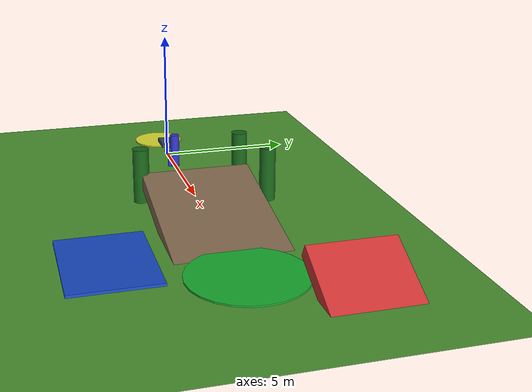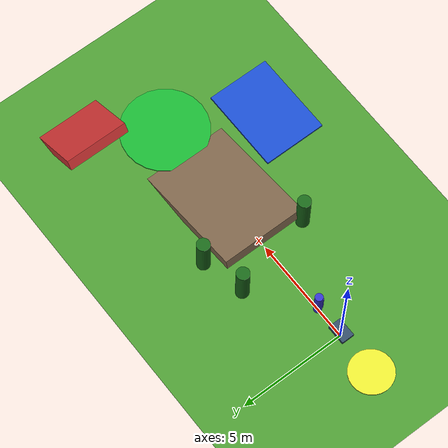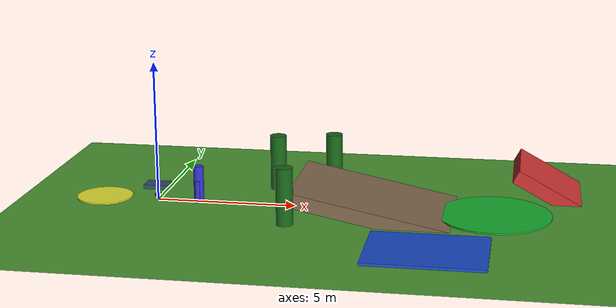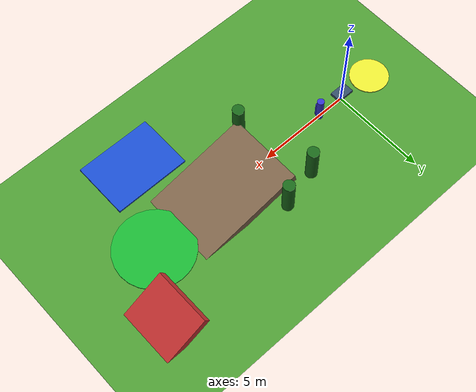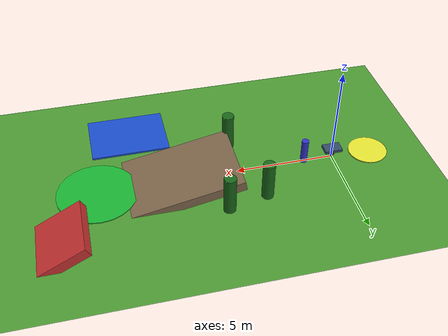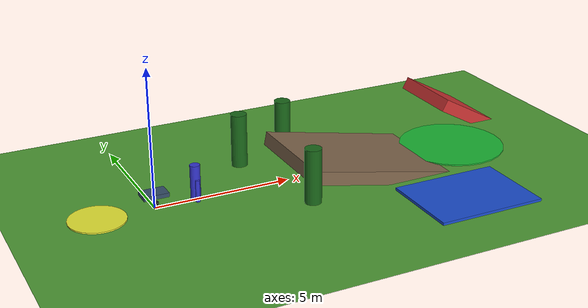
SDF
<?xml version="1.0"?>
<sdf version="1.9">
  <world name="golf_course">

    <!-- ===================== Physics ===================== -->
    <physics type="ode">
      <max_step_size>0.001</max_step_size>
      <real_time_factor>1</real_time_factor>
      <real_time_update_rate>1000</real_time_update_rate>
    </physics>

    <!-- run to completion so the simulation actually advances -->
    <plugin filename="gz-sim-physics-system" name="gz::sim::systems::Physics"/>
    <plugin filename="gz-sim-user-commands-system" name="gz::sim::systems::UserCommands"/>
    <plugin filename="gz-sim-scene-broadcaster-system" name="gz::sim::systems::SceneBroadcaster"/>
    <!-- Sensor system: processes LiDAR/IMU/GPS/camera sensors -->
    <plugin filename="gz-sim-sensors-system" name="gz::sim::systems::Sensors"/>
    <!-- IMU and NavSat (GPS) sensor systems -->
    <plugin filename="gz-sim-imu-system" name="gz::sim::systems::Imu"/>
    <plugin filename="gz-sim-navsat-system" name="gz::sim::systems::NavSat"/>

    <!-- ===================== Ground / fairway ===================== -->
    <!-- A large flat ground plane. -->
    <model name="ground_plane">
      <static>true</static>
      <link name="link">
        <collision name="collision">
          <geometry>
            <plane>
              <normal>0 0 1</normal>
              <size>200 200</size>
            </plane>
          </geometry>
        </collision>
        <visual name="visual">
          <geometry>
            <plane>
              <normal>0 0 1</normal>
              <size>200 200</size>
            </plane>
          </geometry>
          <material>
            <ambient>0.3 0.6 0.2 1</ambient>
            <diffuse>0.3 0.6 0.2 1</diffuse>
          </material>
        </visual>
      </link>
    </model>

    <!-- ===================== Slope (test roll/pitch costmap) ===================== -->
    <!-- A ramp rising toward +X, so the cart pitches up when driving onto it. -->
    <model name="slope_ramp">
      <static>true</static>
      <pose>8 0 0 0 0 0</pose>
      <link name="link">
        <collision name="collision">
          <geometry>
            <box>
              <size>6 4 0.5</size>
            </box>
          </geometry>
          <pose>0 0 0.25 0 0.2 0</pose>
        </collision>
        <visual name="visual">
          <geometry>
            <box>
              <size>6 4 0.5</size>
            </box>
          </geometry>
          <pose>0 0 0.25 0 0.2 0</pose>
          <material>
            <ambient>0.5 0.4 0.3 1</ambient>
            <diffuse>0.5 0.4 0.3 1</diffuse>
          </material>
        </visual>
      </link>
    </model>

    <!-- ===================== Obstacles (trees) ===================== -->
    <!-- A cluster of trees to the right of the cart's path. -->
    <model name="tree_1">
      <static>true</static>
      <pose>4 2 0 0 0 0</pose>
      <link name="link">
        <collision name="collision">
          <geometry>
            <cylinder>
              <radius>0.3</radius>
              <length>2.0</length>
            </cylinder>
          </geometry>
          <pose>0 0 1.0 0 0 0</pose>
        </collision>
        <visual name="visual">
          <geometry>
            <cylinder>
              <radius>0.3</radius>
              <length>2.0</length>
            </cylinder>
          </geometry>
          <pose>0 0 1.0 0 0 0</pose>
          <material>
            <ambient>0.1 0.4 0.1 1</ambient>
            <diffuse>0.1 0.4 0.1 1</diffuse>
          </material>
        </visual>
      </link>
    </model>

    <model name="tree_2">
      <static>true</static>
      <pose>6 2.5 0 0 0 0</pose>
      <link name="link">
        <collision name="collision">
          <geometry>
            <cylinder>
              <radius>0.3</radius>
              <length>2.0</length>
            </cylinder>
          </geometry>
          <pose>0 0 1.0 0 0 0</pose>
        </collision>
        <visual name="visual">
          <geometry>
            <cylinder>
              <radius>0.3</radius>
              <length>2.0</length>
            </cylinder>
          </geometry>
          <pose>0 0 1.0 0 0 0</pose>
          <material>
            <ambient>0.1 0.4 0.1 1</ambient>
            <diffuse>0.1 0.4 0.1 1</diffuse>
          </material>
        </visual>
      </link>
    </model>

    <model name="tree_3">
      <static>true</static>
      <pose>5 -2 0 0 0 0</pose>
      <link name="link">
        <collision name="collision">
          <geometry>
            <cylinder>
              <radius>0.3</radius>
              <length>2.0</length>
            </cylinder>
          </geometry>
          <pose>0 0 1.0 0 0 0</pose>
        </collision>
        <visual name="visual">
          <geometry>
            <cylinder>
              <radius>0.3</radius>
              <length>2.0</length>
            </cylinder>
          </geometry>
          <pose>0 0 1.0 0 0 0</pose>
          <material>
            <ambient>0.1 0.4 0.1 1</ambient>
            <diffuse>0.1 0.4 0.1 1</diffuse>
          </material>
        </visual>
      </link>
    </model>

    <!-- ===================== Green (target area) ===================== -->
    <model name="green">
      <static>true</static>
      <pose>12 0 0 0 0 0</pose>
      <link name="link">
        <collision name="collision">
          <geometry>
            <cylinder>
              <radius>2.0</radius>
              <length>0.05</length>
            </cylinder>
          </geometry>
          <pose>0 0 0.025 0 0 0</pose>
        </collision>
        <visual name="visual">
          <geometry>
            <cylinder>
              <radius>2.0</radius>
              <length>0.05</length>
            </cylinder>
          </geometry>
          <pose>0 0 0.025 0 0 0</pose>
          <material>
            <ambient>0.1 0.7 0.2 1</ambient>
            <diffuse>0.1 0.7 0.2 1</diffuse>
          </material>
        </visual>
      </link>
    </model>

    <!-- ===================== Tee (start area) ===================== -->
    <model name="tee">
      <static>true</static>
      <pose>-2 0 0 0 0 0</pose>
      <link name="link">
        <collision name="collision">
          <geometry>
            <cylinder>
              <radius>1.0</radius>
              <length>0.05</length>
            </cylinder>
          </geometry>
          <pose>0 0 0.025 0 0 0</pose>
        </collision>
        <visual name="visual">
          <geometry>
            <cylinder>
              <radius>1.0</radius>
              <length>0.05</length>
            </cylinder>
          </geometry>
          <pose>0 0 0.025 0 0 0</pose>
          <material>
            <ambient>0.9 0.9 0.2 1</ambient>
            <diffuse>0.9 0.9 0.2 1</diffuse>
          </material>
        </visual>
      </link>
    </model>

    <!-- ===================== Water hazard (forbidden zone) ===================== -->
    <model name="water_hazard">
      <static>true</static>
      <pose>10 -4 0 0 0 0</pose>
      <link name="link">
        <collision name="collision">
          <geometry>
            <box>
              <size>4 3 0.1</size>
            </box>
          </geometry>
          <pose>0 0 0.05 0 0 0</pose>
        </collision>
        <visual name="visual">
          <geometry>
            <box>
              <size>4 3 0.1</size>
            </box>
          </geometry>
          <pose>0 0 0.05 0 0 0</pose>
          <material>
            <ambient>0.1 0.3 0.8 1</ambient>
            <diffuse>0.1 0.3 0.8 1</diffuse>
          </material>
        </visual>
      </link>
    </model>

    <!-- ===================== Steep zone (forbidden / high slope cost) ===================== -->
    <model name="steep_zone">
      <static>true</static>
      <pose>14 3 0 0 0 0</pose>
      <link name="link">
        <collision name="collision">
          <geometry>
            <box>
              <size>3 3 0.5</size>
            </box>
          </geometry>
          <pose>0 0 0.25 0 0.5 0</pose>
        </collision>
        <visual name="visual">
          <geometry>
            <box>
              <size>3 3 0.5</size>
            </box>
          </geometry>
          <pose>0 0 0.25 0 0.5 0</pose>
          <material>
            <ambient>0.8 0.2 0.2 1</ambient>
            <diffuse>0.8 0.2 0.2 1</diffuse>
          </material>
        </visual>
      </link>
    </model>

    <!-- ===================== Golf cart model ===================== -->
    <model name="golfcart">
      <!-- Spawn the cart at the origin, facing +X. -->
      <pose>0 0 0.18 0 0 0</pose>

      <!-- ===== ros2_control interface read by gz_ros2_control ===== -->
      <ros2_control name="GazeboSystem" type="system">
        <hardware>
          <plugin>gz_ros2_control/GazeboSimSystem</plugin>
        </hardware>
        <joint name="rear_left_wheel_joint">
          <command_interface name="velocity">
            <param name="min">-2.0</param>
            <param name="max">2.0</param>
          </command_interface>
          <state_interface name="velocity"/>
          <state_interface name="position"/>
        </joint>
        <joint name="rear_right_wheel_joint">
          <command_interface name="velocity">
            <param name="min">-2.0</param>
            <param name="max">2.0</param>
          </command_interface>
          <state_interface name="velocity"/>
          <state_interface name="position"/>
        </joint>
      </ros2_control>

      <!-- gz_ros2_control system plugin -->
      <plugin filename="libgz_ros2_control-system.so" name="gz_ros2_control::GazeboSimROS2ControlPlugin">
        <parameters>$(find golfcart_gazebo)/config/ros2_control.yaml</parameters>
      </plugin>

      <!-- ===================== base_link (chassis) ===================== -->
      <link name="base_link">
        <inertial>
          <mass>15.0</mass>
          <inertia>
            <ixx>1.0</ixx>
            <iyy>1.0</iyy>
            <izz>1.0</izz>
            <ixy>0</ixy>
            <ixz>0</ixz>
            <iyz>0</iyz>
          </inertia>
        </inertial>
        <collision name="base_link_collision">
          <geometry>
            <box>
              <size>0.9 0.6 0.15</size>
            </box>
          </geometry>
          <pose>0 0 0.35 0 0 0</pose>
        </collision>
        <visual name="base_link_visual">
          <geometry>
            <box>
              <size>0.9 0.6 0.15</size>
            </box>
          </geometry>
          <pose>0 0 0.35 0 0 0</pose>
          <material>
            <ambient>0.2 0.3 0.4 1</ambient>
            <diffuse>0.2 0.3 0.4 1</diffuse>
          </material>
        </visual>
      </link>

      <self_collide>false</self_collide>

      <!-- ===================== rear_left_wheel ===================== -->
      <link name="rear_left_wheel">
        <inertial>
          <mass>1.0</mass>
          <inertia>
            <ixx>0.01</ixx>
            <iyy>0.01</iyy>
            <izz>0.01</izz>
            <ixy>0</ixy>
            <ixz>0</ixz>
            <iyz>0</iyz>
          </inertia>
        </inertial>
        <collision name="collision">
          <geometry>
            <cylinder>
              <radius>0.15</radius>
              <length>0.05</length>
            </cylinder>
          </geometry>
        </collision>
        <visual name="visual">
          <geometry>
            <cylinder>
              <radius>0.15</radius>
              <length>0.05</length>
            </cylinder>
          </geometry>
          <material>
            <ambient>0.1 0.1 0.1 1</ambient>
            <diffuse>0.1 0.1 0.1 1</diffuse>
          </material>
        </visual>
      </link>

      <joint name="rear_left_wheel_joint" type="revolute">
        <parent>base_link</parent>
        <child>rear_left_wheel</child>
        <pose>-0.25 0.25 0.15 0 0 0</pose>
        <axis>
          <xyz>0 1 0</xyz>
          <limit>
            <lower>-1e9</lower>
            <upper>1e9</upper>
          </limit>
        </axis>
      </joint>

      <!-- ===================== rear_right_wheel ===================== -->
      <link name="rear_right_wheel">
        <inertial>
          <mass>1.0</mass>
          <inertia>
            <ixx>0.01</ixx>
            <iyy>0.01</iyy>
            <izz>0.01</izz>
            <ixy>0</ixy>
            <ixz>0</ixz>
            <iyz>0</iyz>
          </inertia>
        </inertial>
        <collision name="collision">
          <geometry>
            <cylinder>
              <radius>0.15</radius>
              <length>0.05</length>
            </cylinder>
          </geometry>
        </collision>
        <visual name="visual">
          <geometry>
            <cylinder>
              <radius>0.15</radius>
              <length>0.05</length>
            </cylinder>
          </geometry>
          <material>
            <ambient>0.1 0.1 0.1 1</ambient>
            <diffuse>0.1 0.1 0.1 1</diffuse>
          </material>
        </visual>
      </link>

      <joint name="rear_right_wheel_joint" type="revolute">
        <parent>base_link</parent>
        <child>rear_right_wheel</child>
        <pose>-0.25 -0.25 0.15 0 0 0</pose>
        <axis>
          <xyz>0 1 0</xyz>
          <limit>
            <lower>-1e9</lower>
            <upper>1e9</upper>
          </limit>
        </axis>
      </joint>

      <!-- ===================== front_steer (caster column) ===================== -->
      <link name="front_steer">
        <inertial>
          <mass>0.5</mass>
          <inertia>
            <ixx>0.001</ixx>
            <iyy>0.001</iyy>
            <izz>0.001</izz>
            <ixy>0</ixy>
            <ixz>0</ixz>
            <iyz>0</iyz>
          </inertia>
        </inertial>
        <collision name="collision">
          <geometry>
            <cylinder>
              <radius>0.02</radius>
              <length>0.15</length>
            </cylinder>
          </geometry>
          <pose>0 0 0.15 0 0 0</pose>
        </collision>
        <visual name="visual">
          <geometry>
            <cylinder>
              <radius>0.02</radius>
              <length>0.15</length>
            </cylinder>
          </geometry>
          <pose>0 0 0.15 0 0 0</pose>
          <material>
            <ambient>0.4 0.4 0.45 1</ambient>
            <diffuse>0.4 0.4 0.45 1</diffuse>
          </material>
        </visual>
      </link>

      <joint name="front_steer_joint" type="revolute">
        <parent>base_link</parent>
        <child>front_steer</child>
        <pose>0.35 0 0 0 0 0</pose>
        <axis>
          <xyz>0 0 1</xyz>
        </axis>
      </joint>

      <!-- ===================== front_wheel ===================== -->
      <link name="front_wheel">
        <inertial>
          <mass>0.8</mass>
          <inertia>
            <ixx>0.005</ixx>
            <iyy>0.005</iyy>
            <izz>0.005</izz>
            <ixy>0</ixy>
            <ixz>0</ixz>
            <iyz>0</iyz>
          </inertia>
        </inertial>
        <collision name="collision">
          <geometry>
            <cylinder>
              <radius>0.12</radius>
              <length>0.04</length>
            </cylinder>
          </geometry>
        </collision>
        <visual name="visual">
          <geometry>
            <cylinder>
              <radius>0.12</radius>
              <length>0.04</length>
            </cylinder>
          </geometry>
          <material>
            <ambient>0.1 0.1 0.1 1</ambient>
            <diffuse>0.1 0.1 0.1 1</diffuse>
          </material>
        </visual>
      </link>

      <joint name="front_wheel_joint" type="revolute">
        <parent>front_steer</parent>
        <child>front_wheel</child>
        <pose>0 0 0.12 0 0 0</pose>
        <axis>
          <xyz>0 1 0</xyz>
        </axis>
      </joint>

      <!-- ===================== mast (sensor column) ===================== -->
      <link name="mast">
        <inertial>
          <mass>0.5</mass>
          <inertia>
            <ixx>0.001</ixx>
            <iyy>0.001</iyy>
            <izz>0.001</izz>
            <ixy>0</ixy>
            <ixz>0</ixz>
            <iyz>0</iyz>
          </inertia>
        </inertial>
        <collision name="collision">
          <geometry>
            <cylinder>
              <radius>0.03</radius>
              <length>0.5</length>
            </cylinder>
          </geometry>
          <pose>0 0 0.5 0 0 0</pose>
        </collision>
        <visual name="visual">
          <geometry>
            <cylinder>
              <radius>0.03</radius>
              <length>0.5</length>
            </cylinder>
          </geometry>
          <pose>0 0 0.5 0 0 0</pose>
          <material>
            <ambient>0.4 0.4 0.45 1</ambient>
            <diffuse>0.4 0.4 0.45 1</diffuse>
          </material>
        </visual>
      </link>

      <joint name="mast_joint" type="fixed">
        <parent>base_link</parent>
        <child>mast</child>
        <pose>0.35 0 0 0 0 0</pose>
      </joint>

      <!-- ===================== lidar_link ===================== -->
      <link name="lidar_link">
        <inertial>
          <mass>0.1</mass>
          <inertia>
            <ixx>0.0001</ixx>
            <iyy>0.0001</iyy>
            <izz>0.0001</izz>
            <ixy>0</ixy>
            <ixz>0</ixz>
            <iyz>0</iyz>
          </inertia>
        </inertial>
        <visual name="visual">
          <geometry>
            <cylinder>
              <radius>0.05</radius>
              <length>0.04</length>
            </cylinder>
          </geometry>
        </visual>
        <sensor name="lidar" type="gpu_lidar">
          <always_on>true</always_on>
          <update_rate>10</update_rate>
          <visualize>true</visualize>
          <topic>lidar</topic>
          <pose>0 0 0 0 0 0</pose>
          <frame_name>lidar_link</frame_name>
          <lidar>
            <scan>
              <horizontal>
                <samples>360</samples>
                <resolution>1</resolution>
                <min_angle>-3.141592653589793</min_angle>
                <max_angle>3.141592653589793</max_angle>
              </horizontal>
            </scan>
            <range>
              <min>0.1</min>
              <max>30.0</max>
              <resolution>0.01</resolution>
            </range>
          </lidar>
        </sensor>
      </link>
      <joint name="lidar_joint" type="fixed">
        <parent>mast</parent>
        <child>lidar_link</child>
        <pose>0 0 0.65 0 0 0</pose>
      </joint>

      <!-- ===================== imu_link ===================== -->
      <link name="imu_link">
        <inertial>
          <mass>0.1</mass>
          <inertia>
            <ixx>0.0001</ixx>
            <iyy>0.0001</iyy>
            <izz>0.0001</izz>
            <ixy>0</ixy>
            <ixz>0</ixz>
            <iyz>0</iyz>
          </inertia>
        </inertial>
        <visual name="visual">
          <geometry>
            <box>
              <size>0.03 0.03 0.02</size>
            </box>
          </geometry>
        </visual>
        <sensor name="imu" type="imu">
          <always_on>true</always_on>
          <update_rate>100</update_rate>
          <visualize>true</visualize>
          <topic>imu</topic>
          <pose>0 0 0 0 0 0</pose>
          <frame_name>imu_link</frame_name>
        </sensor>
      </link>
      <joint name="imu_joint" type="fixed">
        <parent>mast</parent>
        <child>imu_link</child>
        <pose>0 0 0.6 0 0 0</pose>
      </joint>

      <!-- ===================== gps_link ===================== -->
      <link name="gps_link">
        <inertial>
          <mass>0.1</mass>
          <inertia>
            <ixx>0.0001</ixx>
            <iyy>0.0001</iyy>
            <izz>0.0001</izz>
            <ixy>0</ixy>
            <ixz>0</ixz>
            <iyz>0</iyz>
          </inertia>
        </inertial>
        <visual name="visual">
          <geometry>
            <box>
              <size>0.04 0.04 0.01</size>
            </box>
          </geometry>
        </visual>
        <sensor name="gps" type="navsat">
          <always_on>true</always_on>
          <update_rate>10</update_rate>
          <visualize>true</visualize>
          <topic>gps</topic>
          <pose>0 0 0 0 0 0</pose>
          <frame_name>gps_link</frame_name>
        </sensor>
      </link>
      <joint name="gps_joint" type="fixed">
        <parent>mast</parent>
        <child>gps_link</child>
        <pose>0 0 0.7 0 0 0</pose>
      </joint>

      <!-- ===================== camera ===================== -->
      <link name="camera_link">
        <inertial>
          <mass>0.1</mass>
          <inertia>
            <ixx>0.0001</ixx>
            <iyy>0.0001</iyy>
            <izz>0.0001</izz>
            <ixy>0</ixy>
            <ixz>0</ixz>
            <iyz>0</iyz>
          </inertia>
        </inertial>
        <visual name="visual">
          <geometry>
            <box>
              <size>0.06 0.03 0.03</size>
            </box>
          </geometry>
        </visual>
        <sensor name="camera" type="camera">
          <always_on>true</always_on>
          <update_rate>10</update_rate>
          <visualize>true</visualize>
          <topic>camera</topic>
          <pose>0 0 0 0 0 0</pose>
          <frame_name>camera_link</frame_name>
          <camera>
            <horizontal_fov>1.3962634</horizontal_fov>
            <image>
              <width>640</width>
              <height>480</height>
            </image>
            <clip>
              <near>0.1</near>
              <far>100</far>
            </clip>
          </camera>
        </sensor>
      </link>
      <joint name="camera_joint" type="fixed">
        <parent>mast</parent>
        <child>camera_link</child>
        <pose>0 0 0.62 0 0 0</pose>
      </joint>
    </model>

    <model name="person">
      <static>false</static>
      <!-- 1.5m in front of the cart (which is at the origin), within the
           detector's lock_distance (2m) so it can be acquired on start. -->
      <pose>1.5 0 0.0 0 0 0</pose>
      <!-- Leg 1 (torso/lower leg). -->
      <link name="leg1">
        <collision name="leg1_collision">
          <geometry><cylinder><radius>0.08</radius><length>0.8</length></cylinder></geometry>
          <pose>0 0 0.4 0 0 0</pose>
        </collision>
        <visual name="leg1_visual">
          <geometry><cylinder><radius>0.08</radius><length>0.8</length></cylinder></geometry>
          <pose>0 0 0.4 0 0 0</pose>
          <material><ambient>0.2 0.2 0.8 1</ambient><diffuse>0.2 0.2 0.8 1</diffuse></material>
        </visual>
      </link>
      <!-- Leg 2 (slightly offset laterally to form two leg returns). -->
      <link name="leg2">
        <pose>0 -0.2 0 0 0 0</pose>
        <collision name="leg2_collision">
          <geometry><cylinder><radius>0.08</radius><length>0.8</length></cylinder></geometry>
          <pose>0 0 0.4 0 0 0</pose>
        </collision>
        <visual name="leg2_visual">
          <geometry><cylinder><radius>0.08</radius><length>0.8</length></cylinder></geometry>
          <pose>0 0 0.4 0 0 0</pose>
          <material><ambient>0.2 0.2 0.8 1</ambient><diffuse>0.2 0.2 0.8 1</diffuse></material>
        </visual>
      </link>
      <!-- Upper body (torso) crossing the LiDAR scan plane (~0.65 m), so the model
         is visible to the cart's gpu_lidar. -->
      <link name="torso">
        <pose>0 0 0.0 0 0 0</pose>
        <collision name="torso_collision">
          <geometry><cylinder><radius>0.18</radius><length>1.3</length></cylinder></geometry>
          <pose>0 0 0.65 0 0 0</pose>
        </collision>
        <visual name="torso_visual">
          <geometry><cylinder><radius>0.18</radius><length>1.3</length></cylinder></geometry>
          <pose>0 0 0.65 0 0 0</pose>
          <material><ambient>0.2 0.2 0.8 1</ambient><diffuse>0.2 0.2 0.8 1</diffuse></material>
        </visual>
      </link>
      <!-- Fixed joints connecting the links into one rigid body. -->
      <joint name="leg1_to_base" type="fixed">
        <parent>leg1</parent>
        <child>leg2</child>
      </joint>
      <joint name="torso_to_leg1" type="fixed">
        <parent>leg1</parent>
        <child>torso</child>
      </joint>
    </model>

    <!-- ===================== Sun / lighting ===================== -->
    <light type="directional" name="sun">
      <cast_shadows>true</cast_shadows>
      <pose>0 0 10 0 0 0</pose>
      <diffuse>1 1 1 1</diffuse>
      <specular>0.5 0.5 0.5 1</specular>
      <direction>-0.5 0.1 -0.9</direction>
    </light>

    <!-- ===================== GUI / camera ===================== -->
    <gui fullscreen="0">
      <camera name="user_camera">
        <pose>6 -6 6 0 0.5 0.3</pose>
      </camera>
    </gui>

  </world>
</sdf>
